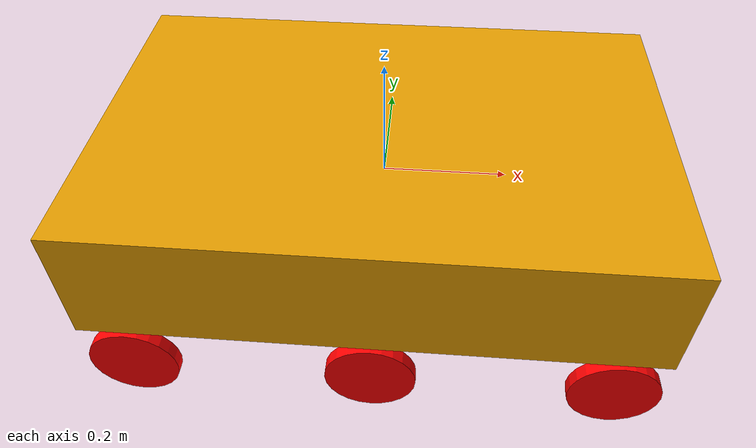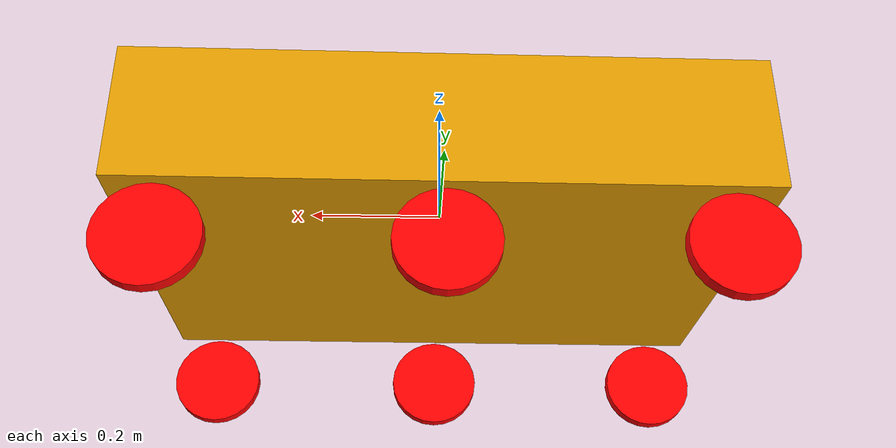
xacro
<?xml version="1.0"?>
<robot name="fake_MiR200"
       xmlns:xacro="http://ros.org/wiki/xacro">

  <!-- Constants for robot dimensions -->
  <xacro:property name="chassis_width" value=".58" />
  <xacro:property name="chassis_length" value=".89" />
  <xacro:property name="chassis_height" value=".2" />
  <xacro:property name="robot_mass" value="67.0" />
  <xacro:property name="chassis_mass" value="${.95 * robot_mass}" />
  <xacro:property name="robot_height" value=".352" />
  <xacro:property name="wheel_clearance" value=".01" />
  <xacro:property name="wheel_radius" value="${(robot_height - chassis_height - wheel_clearance) / 2}" />
  <xacro:property name="wheel_thickness" value=".02" />
  <xacro:property name="pi" value="3.14159265359" />

  <!-- Macro for cuboid mass moment of inertia -->
  <xacro:macro name="cuboid_moment_of_inertia" params="m d1 d2 d3">
    <inertia ixx="${m * (d2 * d2 + d3 * d3) / 12}" ixy="0.0" ixz="0.0"
	     iyy="${m * (d1 * d1 + d3 * d3) / 12}" iyz="0.0"
	     izz="${m * (d1 * d1 + d2 * d2) / 12}" />
  </xacro:macro>

  <!-- Macro for cylinder mass moment of inertia -->
  <xacro:macro name="cylinder_moment_of_inertia" params="m r h">
    <inertia ixx="${m * (3 * r * r + h * h) / 12}" ixy="0.0" ixz="0.0"
	     iyy="${m * (3 * r * r + h * h) / 12}" iyz="0.0"
	     izz="${m * r * r / 2}" />
  </xacro:macro>

  <!-- Macro for wheel links -->
  <xacro:macro name="wheel_n_link" params="n r l x y z j_type">
    <link name="wheel_${n}_link">

      <visual>
	<geometry>
	  <cylinder length="${l}" radius="${r}" />
	</geometry>
	<material name="red">
	  <color rgba="1 0 0 1" />
	</material>
      </visual>

      <collision>
	<geometry>
	  <cylinder length="${l}" radius="${r}" />
	</geometry>
      </collision>

      <inertial>
	<mass value="${(robot_mass - chassis_mass) / 6}" />
	<xacro:cylinder_moment_of_inertia m="${(robot_mass - chassis_mass) / 6}" r="${wheel_radius}" h="${wheel_thickness}" />
      </inertial>
    </link>

    <joint name="wheel_${n}_joint" type="${j_type}">
      <axis xyz="0 0 1" />
      <parent link="chassis" />
      <child link="wheel_${n}_link" />
      <origin xyz="${x} ${y} ${z}" rpy="-${pi / 2} 0 0" />
    </joint>
  </xacro:macro>

  <!-- Macro for making a wheel frictionless -->
  <xacro:macro name="make_wheel_n_frictionless" params="n">
    <gazebo reference="wheel_${n}_link">
      <mu1>0</mu1>
      <mu2>0</mu2>
      <material>Gazebo/Red</material>
    </gazebo>
  </xacro:macro>

  <!-- Chassis link -->
  <link name="chassis">
    <visual name="visual">
      <geometry>
	<box size="${chassis_length} ${chassis_width} ${chassis_height}" />
      </geometry>
    </visual>

    <collision name="collision">
      <geometry>
	<box size="${chassis_length} ${chassis_width} ${chassis_height}" />
      </geometry>
    </collision>

    <inertial>
      <mass value="${chassis_mass}" />
      <xacro:cuboid_moment_of_inertia m="${chassis_mass}" d1="${chassis_length}" d2="${chassis_width}" d3="${chassis_height}" />
    </inertial>
  </link>

  <!-- Wheel links -->
  <xacro:wheel_n_link n="1" r="${wheel_radius}" l="${wheel_thickness}"
		      x="${chassis_length / 2 - wheel_radius}"
		      y="${(chassis_width - wheel_thickness) / 2}"
		      z="${-(wheel_radius + wheel_clearance + chassis_height / 2)}"
		      j_type="fixed"
		      />

  <xacro:wheel_n_link n="2" r="${wheel_radius}" l="${wheel_thickness}"
		      x="0"
		      y="${(chassis_width - wheel_thickness) / 2}"
		      z="${-(wheel_radius + wheel_clearance + chassis_height / 2)}"
		      j_type="continuous"
		      />

  <xacro:wheel_n_link n="3" r="${wheel_radius}" l="${wheel_thickness}"
		      x="-${chassis_length / 2 - wheel_radius}"
		      y="${(chassis_width - wheel_thickness) / 2}"
		      z="${-(wheel_radius + wheel_clearance + chassis_height / 2)}"
		      j_type="fixed"
		      />

  <xacro:wheel_n_link n="4" r="${wheel_radius}" l="${wheel_thickness}"
		      x="-${chassis_length / 2 - wheel_radius}"
		      y="-${(chassis_width - wheel_thickness) / 2}"
		      z="${-(wheel_radius + wheel_clearance + chassis_height / 2)}"
		      j_type="fixed"
		      />

  <xacro:wheel_n_link n="5" r="${wheel_radius}" l="${wheel_thickness}"
		      x="0"
		      y="-${(chassis_width - wheel_thickness) / 2}"
		      z="${-(wheel_radius + wheel_clearance + chassis_height / 2)}"
		      j_type="continuous"
		      />

  <xacro:wheel_n_link n="6" r="${wheel_radius}" l="${wheel_thickness}"
		      x="${chassis_length / 2 - wheel_radius}"
		      y="-${(chassis_width - wheel_thickness) / 2}"
		      z="${-(wheel_radius + wheel_clearance + chassis_height / 2)}"
		      j_type="fixed"
		      />

  <!-- Gazebo ros plugin -->
  <gazebo>
    <!-- MQMX to (possibly?) replace this with ros control plugin -->
    <plugin name="differential_drive_controller" filename="libgazebo_ros_diff_drive.so">
      <leftJoint>wheel_2_joint</leftJoint>
      <rightJoint>wheel_5_joint</rightJoint>
      <robotBaseFrame>chassis</robotBaseFrame>
      <wheelSeparation>${chassis_width - wheel_thickness}</wheelSeparation>
      <wheelDiameter>${2 * wheel_radius}</wheelDiameter>
      <publishWheelJointState>true</publishWheelJointState>
      <legacyMode>false</legacyMode>
    </plugin>

    <!-- turn on self-collision detection so that links will not pass through each other -->
    <self_collide>1</self_collide>

    <!-- This is only needed for rviz, not for Gazebo -->

    <!-- this is needed by the UR 10 controller -->
    <!--plugin name="ros_control" filename="libgazebo_ros_control.so" /-->
  </gazebo>

  <!-- Change friction parameters for caster wheels -->
  <xacro:make_wheel_n_frictionless n="1" />

  <xacro:make_wheel_n_frictionless n="3" />

  <xacro:make_wheel_n_frictionless n="4" />

  <xacro:make_wheel_n_frictionless n="6" />

</robot>
